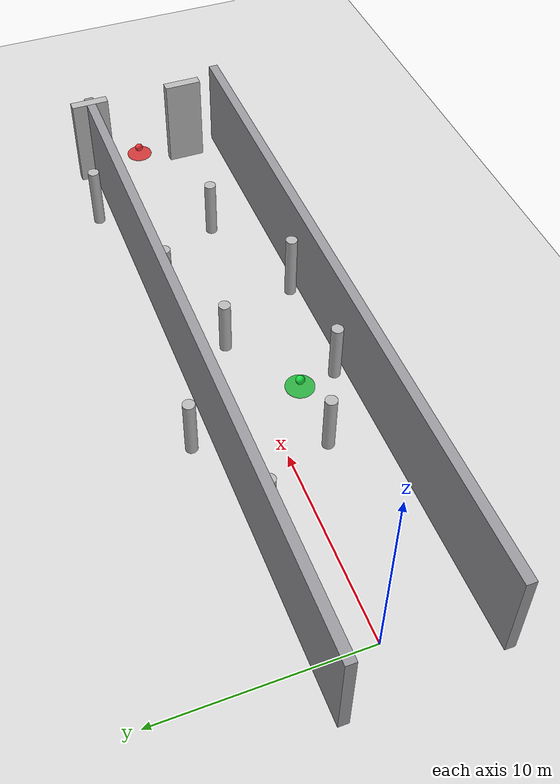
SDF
<sdf version="1.10">
 <world name="obstacle_avoidance">
  <physics type="ode">
   <max_step_size>0.0040000000000000001</max_step_size>
   <real_time_factor>1</real_time_factor>
   <real_time_update_rate>250</real_time_update_rate>
  </physics>
  <plugin name="gz::sim::systems::Physics" filename="gz-sim-physics-system"/>
  <plugin name="gz::sim::systems::UserCommands" filename="gz-sim-user-commands-system"/>
  <plugin name="gz::sim::systems::SceneBroadcaster" filename="gz-sim-scene-broadcaster-system"/>
  <plugin name="gz::sim::systems::Contact" filename="gz-sim-contact-system"/>
  <plugin name="gz::sim::systems::Imu" filename="gz-sim-imu-system"/>
  <plugin name="gz::sim::systems::AirPressure" filename="gz-sim-air-pressure-system"/>
  <plugin name="gz::sim::systems::AirSpeed" filename="gz-sim-air-speed-system"/>
  <plugin name="gz::sim::systems::ApplyLinkWrench" filename="gz-sim-apply-link-wrench-system"/>
  <plugin name="gz::sim::systems::NavSat" filename="gz-sim-navsat-system"/>
  <plugin name="gz::sim::systems::Magnetometer" filename="gz-sim-magnetometer-system"/>
  <plugin name="gz::sim::systems::Sensors" filename="gz-sim-sensors-system">
   <render_engine>ogre2</render_engine>
  </plugin>
  <plugin name="custom::OpticalFlowSystem" filename="libOpticalFlowSystem.so"/>
  <plugin name="custom::GstCameraSystem" filename="libGstCameraSystem.so"/>
  <gravity>0 0 -9.8000000000000007</gravity>
  <magnetic_field>6.0000000000000002e-06 2.3e-05 -4.1999999999999998e-05</magnetic_field>
  <atmosphere type="adiabatic"/>
  <scene>
   <grid>true</grid>
   <ambient>0.449999988 0.449999988 0.449999988 1</ambient>
   <background>0.74000001 0.769999981 0.819999993 1</background>
   <shadows>true</shadows>
  </scene>
  <spherical_coordinates>
   <surface_model>EARTH_WGS84</surface_model>
   <world_frame_orientation>ENU</world_frame_orientation>
   <latitude_deg>47.397971057728974</latitude_deg>
   <longitude_deg>8.5461637398001464</longitude_deg>
   <elevation>0</elevation>
   <heading_deg>0</heading_deg>
  </spherical_coordinates>
  <model name="ground_plane">
   <static>true</static>
   <link name="link">
    <collision name="collision">
     <geometry><plane><normal>0 0 1</normal><size>1 1</size></plane></geometry>
    </collision>
    <visual name="visual">
     <geometry><plane><normal>0 0 1</normal><size>120 120</size></plane></geometry>
     <material>
      <ambient>0.850000024 0.850000024 0.850000024 1</ambient>
      <diffuse>0.850000024 0.850000024 0.850000024 1</diffuse>
      <specular>0.400000006 0.400000006 0.400000006 1</specular>
     </material>
    </visual>
    <inertial>
     <mass>1</mass>
     <inertia><ixx>1</ixx><ixy>0</ixy><ixz>0</ixz><iyy>1</iyy><iyz>0</iyz><izz>1</izz></inertia>
    </inertial>
   </link>
  </model>
  <model name="lane_left_wall">
   <static>false</static>
   <pose>15.436311224357818 2.7322387336329408 2.4999872408807806 -8.0747196741539582e-07 -8.9138525958065754e-09 1.4727183036375318e-07</pose>
   <link name="link">
    <collision name="collision"><geometry><box><size>36 0.5 5</size></box></geometry></collision>
    <visual name="visual">
     <geometry><box><size>36 0.5 5</size></box></geometry>
     <material>
      <ambient>0.5 0.5 0.519999981 1</ambient>
      <diffuse>0.600000024 0.600000024 0.620000005 1</diffuse>
     </material>
    </visual>
    <inertial>
     <mass>1</mass>
     <inertia><ixx>1</ixx><ixy>0</ixy><ixz>0</ixz><iyy>1</iyy><iyz>0</iyz><izz>1</izz></inertia>
    </inertial>
   </link>
  </model>
  <model name="lane_right_wall">
   <static>false</static>
   <pose>16 -4.7976698875427246 2.4999879531577283 -8.9185550480727362e-17 5.2674483749006176e-18 2.1402072347727736e-19</pose>
   <link name="link">
    <collision name="collision"><geometry><box><size>36 0.5 5</size></box></geometry></collision>
    <visual name="visual">
     <geometry><box><size>36 0.5 5</size></box></geometry>
     <material>
      <ambient>0.5 0.5 0.519999981 1</ambient>
      <diffuse>0.600000024 0.600000024 0.620000005 1</diffuse>
     </material>
    </visual>
    <inertial>
     <mass>1</mass>
     <inertia><ixx>1</ixx><ixy>0</ixy><ixz>0</ixz><iyy>1</iyy><iyz>0</iyz><izz>1</izz></inertia>
    </inertial>
   </link>
  </model>
  <model name="block_01">
   <static>false</static>
   <pose>7 2.1000000000000001 1.5999998682091516 1.213765386392223e-16 1.5371901239552927e-16 -4.3427022583894457e-18</pose>
   <link name="link">
    <collision name="collision">
     <geometry>
      <cylinder><radius>0.29999999999999999</radius><length>3.2000000000000002</length></cylinder>
     </geometry>
    </collision>
    <visual name="visual">
     <geometry>
      <cylinder><radius>0.29999999999999999</radius><length>3.2000000000000002</length></cylinder>
     </geometry>
    </visual>
    <inertial>
     <mass>1</mass>
     <inertia><ixx>1</ixx><ixy>0</ixy><ixz>0</ixz><iyy>1</iyy><iyz>0</iyz><izz>1</izz></inertia>
    </inertial>
   </link>
  </model>
  <model name="block_02">
   <static>false</static>
   <pose>10 -2 1.5999991336223707 -2.4656638708241914e-17 2.5742117864282655e-17 -1.2283136786083452e-19</pose>
   <link name="link">
    <collision name="collision">
     <geometry>
      <cylinder><radius>0.29999999999999999</radius><length>3.2000000000000002</length></cylinder>
     </geometry>
    </collision>
    <visual name="visual">
     <geometry>
      <cylinder><radius>0.29999999999999999</radius><length>3.2000000000000002</length></cylinder>
     </geometry>
    </visual>
    <inertial>
     <mass>1</mass>
     <inertia><ixx>1</ixx><ixy>0</ixy><ixz>0</ixz><iyy>1</iyy><iyz>0</iyz><izz>1</izz></inertia>
    </inertial>
   </link>
  </model>
  <model name="block_03">
   <static>false</static>
   <pose>17.472200393676758 0.39522233605384827 1.3506830785443666 -1.2204143312586427e-16 1.4387509609408172e-16 -2.682961555773993e-19</pose>
   <link name="link">
    <collision name="collision">
     <geometry>
      <cylinder><radius>0.29999999999999999</radius><length>3.2000000000000002</length></cylinder>
     </geometry>
    </collision>
    <visual name="visual">
     <geometry>
      <cylinder><radius>0.29999999999999999</radius><length>3.2000000000000002</length></cylinder>
     </geometry>
    </visual>
    <inertial>
     <mass>1</mass>
     <inertia><ixx>1</ixx><ixy>0</ixy><ixz>0</ixz><iyy>1</iyy><iyz>0</iyz><izz>1</izz></inertia>
    </inertial>
   </link>
  </model>
  <model name="block_04">
   <static>false</static>
   <pose>13.89579963684082 -3.9877727031707764 1.5999998694408795 -1.4856133970210832e-16 1.2970680524676429e-16 -8.2543074614688196e-19</pose>
   <link name="link">
    <collision name="collision">
     <geometry>
      <cylinder><radius>0.29999999999999999</radius><length>3.2000000000000002</length></cylinder>
     </geometry>
    </collision>
    <visual name="visual">
     <geometry>
      <cylinder><radius>0.29999999999999999</radius><length>3.2000000000000002</length></cylinder>
     </geometry>
    </visual>
    <inertial>
     <mass>1</mass>
     <inertia><ixx>1</ixx><ixy>0</ixy><ixz>0</ixz><iyy>1</iyy><iyz>0</iyz><izz>1</izz></inertia>
    </inertial>
   </link>
  </model>
  <model name="block_05">
   <static>false</static>
   <pose>22 2 1.5999992089195469 7.533105745545161e-17 5.2093644940365218e-17 2.0606915202690502e-19</pose>
   <link name="link">
    <collision name="collision">
     <geometry>
      <cylinder><radius>0.29999999999999999</radius><length>3.2000000000000002</length></cylinder>
     </geometry>
    </collision>
    <visual name="visual">
     <geometry>
      <cylinder><radius>0.29999999999999999</radius><length>3.2000000000000002</length></cylinder>
     </geometry>
    </visual>
    <inertial>
     <mass>1</mass>
     <inertia><ixx>1</ixx><ixy>0</ixy><ixz>0</ixz><iyy>1</iyy><iyz>0</iyz><izz>1</izz></inertia>
    </inertial>
   </link>
  </model>
  <model name="block_06">
   <static>false</static>
   <pose>26 -1.8 1.5999998682091516 -5.2718210809088764e-17 1.2651731814549251e-16 6.3680309664652493e-18</pose>
   <link name="link">
    <collision name="collision">
     <geometry>
      <cylinder><radius>0.29999999999999999</radius><length>3.2000000000000002</length></cylinder>
     </geometry>
    </collision>
    <visual name="visual">
     <geometry>
      <cylinder><radius>0.29999999999999999</radius><length>3.2000000000000002</length></cylinder>
     </geometry>
    </visual>
    <inertial>
     <mass>1</mass>
     <inertia><ixx>1</ixx><ixy>0</ixy><ixz>0</ixz><iyy>1</iyy><iyz>0</iyz><izz>1</izz></inertia>
    </inertial>
   </link>
  </model>
  <model name="cyl_01">
   <static>false</static>
   <pose>12 4 1.5999992086633334 2.2687360345456637e-18 4.5657228771581074e-18 -1.896154608907737e-19</pose>
   <link name="link">
    <collision name="collision">
     <geometry>
      <cylinder><radius>0.29999999999999999</radius><length>3.2000000000000002</length></cylinder>
     </geometry>
    </collision>
    <visual name="visual">
     <geometry>
      <cylinder><radius>0.29999999999999999</radius><length>3.2000000000000002</length></cylinder>
     </geometry>
    </visual>
    <inertial>
     <mass>1</mass>
     <inertia><ixx>1</ixx><ixy>0</ixy><ixz>0</ixz><iyy>1</iyy><iyz>0</iyz><izz>1</izz></inertia>
    </inertial>
   </link>
  </model>
  <model name="cyl_02">
   <static>false</static>
   <pose>20 -4.0999999999999996 1.7999992086633334 -5.95015447457351e-18 -7.1830272029298781e-18 8.102279845254366e-20</pose>
   <link name="link">
    <collision name="collision">
     <geometry>
      <cylinder><radius>0.29999999999999999</radius><length>3.6000000000000001</length></cylinder>
     </geometry>
    </collision>
    <visual name="visual">
     <geometry>
      <cylinder><radius>0.29999999999999999</radius><length>3.6000000000000001</length></cylinder>
     </geometry>
    </visual>
    <inertial>
     <mass>1</mass>
     <inertia><ixx>1</ixx><ixy>0</ixy><ixz>0</ixz><iyy>1</iyy><iyz>0</iyz><izz>1</izz></inertia>
    </inertial>
   </link>
  </model>
  <model name="cyl_03">
   <static>false</static>
   <pose>29 3.7999999999999998 1.6999992086633333 2.9183300555717811e-18 3.6794603956307752e-18 6.9962869253696579e-20</pose>
   <link name="link">
    <collision name="collision">
     <geometry>
      <cylinder><radius>0.29999999999999999</radius><length>3.3999999999999999</length></cylinder>
     </geometry>
    </collision>
    <visual name="visual">
     <geometry>
      <cylinder><radius>0.29999999999999999</radius><length>3.3999999999999999</length></cylinder>
     </geometry>
    </visual>
    <inertial>
     <mass>1</mass>
     <inertia><ixx>1</ixx><ixy>0</ixy><ixz>0</ixz><iyy>1</iyy><iyz>0</iyz><izz>1</izz></inertia>
    </inertial>
   </link>
  </model>
  <model name="start_marker">
   <static>true</static>
   <pose>11.846780776977539 -1.2698999643325806 2.4097199440002441 0 0 0</pose>
   <link name="link">
    <gravity>false</gravity>
    <kinematic>true</kinematic>
    <visual name="base_ring">
     <geometry>
      <cylinder><radius>0.69999999999999996</radius><length>0.040000000000000001</length></cylinder>
     </geometry>
     <material>
      <ambient>0.100000001 0.699999988 0.200000003 0.850000024</ambient>
      <diffuse>0.100000001 0.699999988 0.200000003 0.850000024</diffuse>
      <specular>0.200000003 0.200000003 0.200000003 1</specular>
     </material>
    </visual>
    <visual name="center_sphere">
     <pose>0 0 0.45000000000000001 0 0 0</pose>
     <geometry><sphere><radius>0.22</radius></sphere></geometry>
     <material>
      <ambient>0.100000001 0.850000024 0.25 1</ambient>
      <diffuse>0.100000001 0.850000024 0.25 1</diffuse>
      <specular>0.300000012 0.300000012 0.300000012 1</specular>
     </material>
    </visual>
    <inertial>
     <mass>1</mass>
     <inertia><ixx>1</ixx><ixy>0</ixy><ixz>0</ixz><iyy>1</iyy><iyz>0</iyz><izz>1</izz></inertia>
    </inertial>
   </link>
  </model>
  <model name="goal_marker">
   <static>true</static>
   <pose>34 0 0.02 0 0 0</pose>
   <link name="link">
    <gravity>false</gravity>
    <kinematic>true</kinematic>
    <visual name="base_ring">
     <geometry>
      <cylinder><radius>0.69999999999999996</radius><length>0.040000000000000001</length></cylinder>
     </geometry>
     <material>
      <ambient>0.850000024 0.150000006 0.150000006 0.850000024</ambient>
      <diffuse>0.850000024 0.150000006 0.150000006 0.850000024</diffuse>
      <specular>0.200000003 0.200000003 0.200000003 1</specular>
     </material>
    </visual>
    <visual name="center_sphere">
     <pose>0 0 0.45000000000000001 0 0 0</pose>
     <geometry><sphere><radius>0.22</radius></sphere></geometry>
     <material>
      <ambient>0.949999988 0.200000003 0.200000003 1</ambient>
      <diffuse>0.949999988 0.200000003 0.200000003 1</diffuse>
      <specular>0.300000012 0.300000012 0.300000012 1</specular>
     </material>
    </visual>
    <inertial>
     <mass>1</mass>
     <inertia><ixx>1</ixx><ixy>0</ixy><ixz>0</ixz><iyy>1</iyy><iyz>0</iyz><izz>1</izz></inertia>
    </inertial>
   </link>
  </model>
  <model name="goal_gate_left">
   <static>false</static>
   <pose>33.023240677051803 2.7930221432873501 2.5000032794509277 6.509593309239957e-10 1.3764718166370093e-05 4.9830461355788942e-05</pose>
   <link name="link">
    <collision name="collision"><geometry><box><size>0.5 2 5</size></box></geometry></collision>
    <visual name="visual"><geometry><box><size>0.5 2 5</size></box></geometry></visual>
    <inertial>
     <mass>1</mass>
     <inertia><ixx>1</ixx><ixy>0</ixy><ixz>0</ixz><iyy>1</iyy><iyz>0</iyz><izz>1</izz></inertia>
    </inertial>
   </link>
  </model>
  <model name="goal_gate_right">
   <static>false</static>
   <pose>33 -2.5757162570953369 2.4999999991915041 -2.7423288038337208e-20 6.4777144866751849e-20 -2.7997424709023121e-21</pose>
   <link name="link">
    <collision name="collision"><geometry><box><size>0.5 2 5</size></box></geometry></collision>
    <visual name="visual"><geometry><box><size>0.5 2 5</size></box></geometry></visual>
    <inertial>
     <mass>1</mass>
     <inertia><ixx>1</ixx><ixy>0</ixy><ixz>0</ixz><iyy>1</iyy><iyz>0</iyz><izz>1</izz></inertia>
    </inertial>
   </link>
  </model>
  <light name="sunUTC" type="directional">
   <pose>0 0 500 0 0 0</pose>
   <intensity>1</intensity>
   <direction>0.001 0.625 -0.78000000000000003</direction>
   <diffuse>0.899999976 0.899999976 0.899999976 1</diffuse>
   <specular>0.25 0.25 0.25 1</specular>
   <attenuation><range>2000</range><linear>0</linear><constant>1</constant><quadratic>0</quadratic></attenuation>
   <spot><inner_angle>0</inner_angle><outer_angle>0</outer_angle><falloff>0</falloff></spot>
  </light>
 </world>
</sdf>
